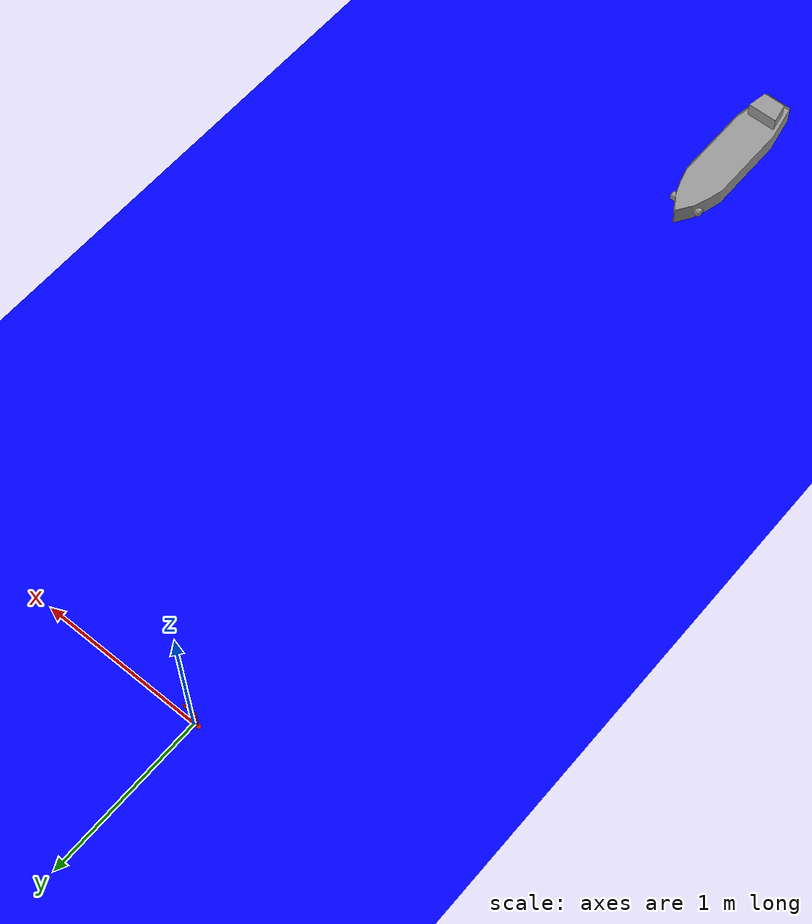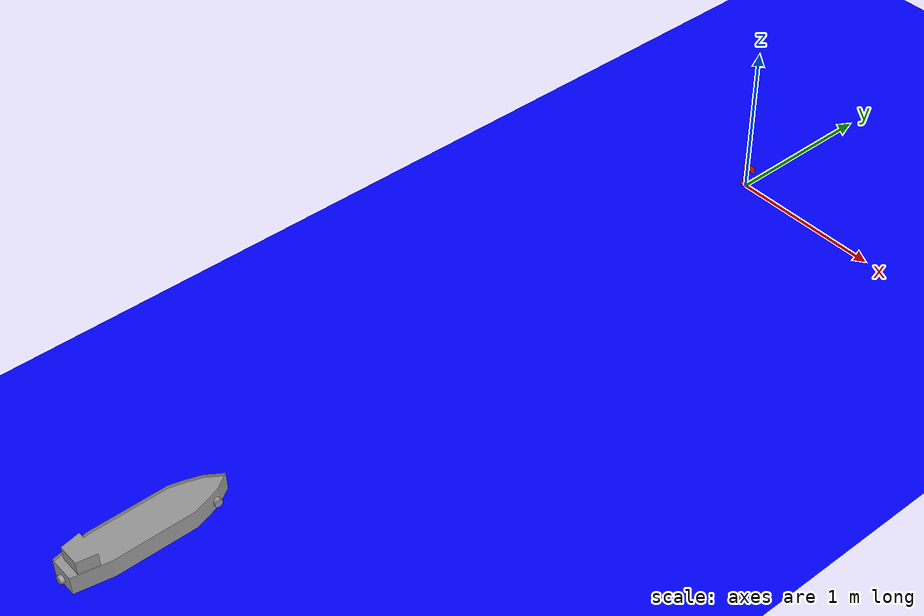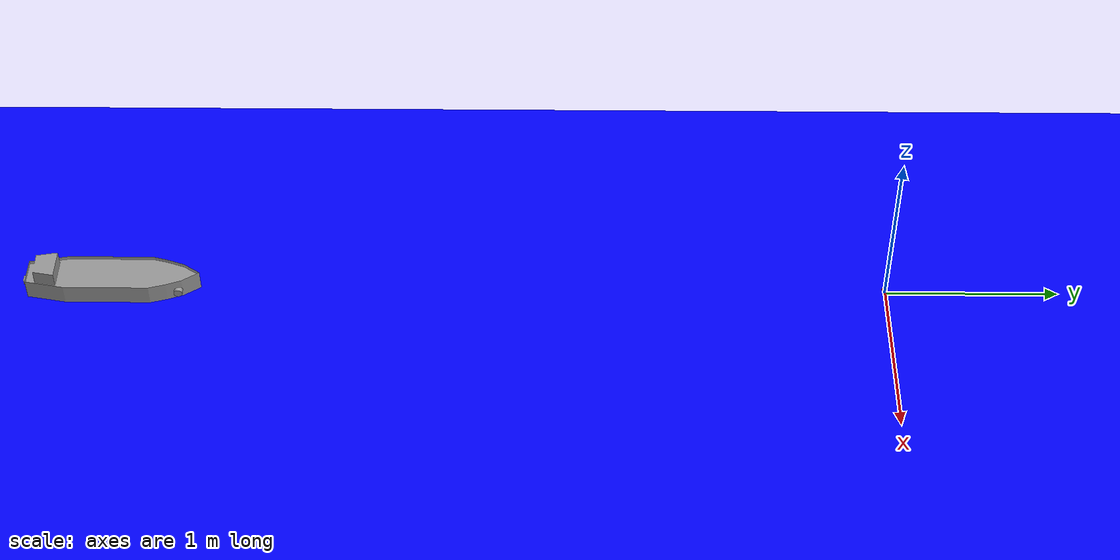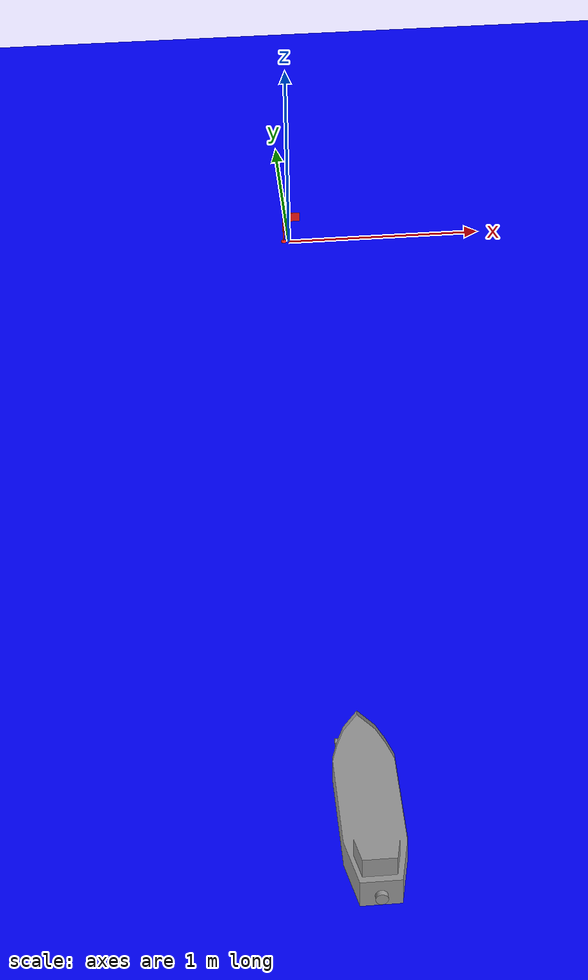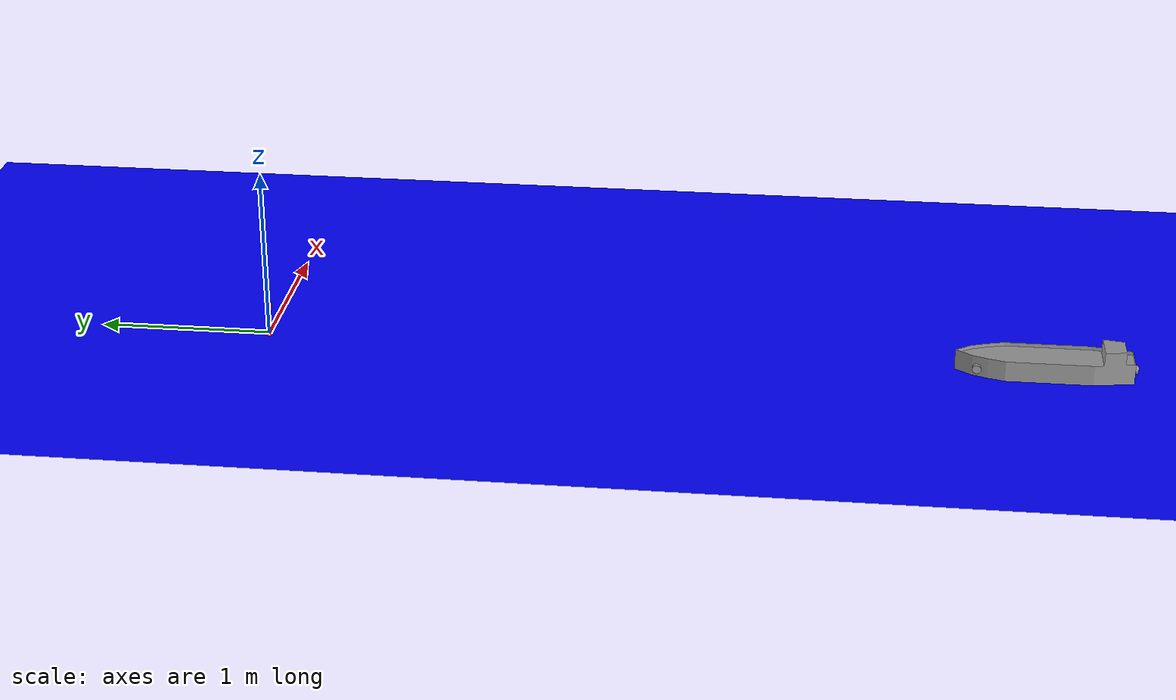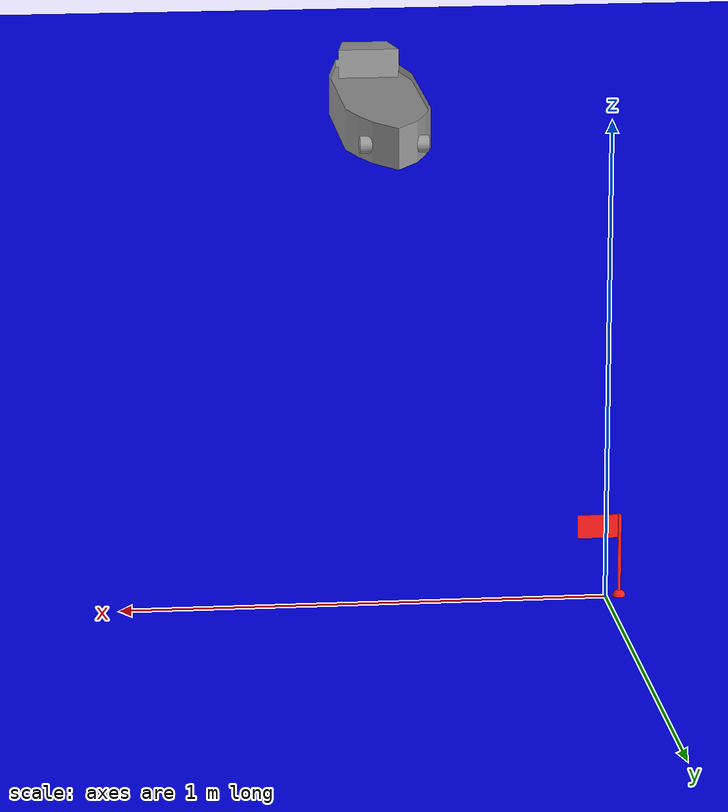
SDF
<sdf version="1.6">
 <world name="default">
  <light name="sun" type="directional">
   <pose>0 0 10 0 -0 0</pose>
   <diffuse>0.8 0.8 0.8 1</diffuse>
   <specular>0.2 0.2 0.2 1</specular>
   <attenuation>
    <range>1000</range>
    <constant>0.9</constant>
    <linear>0.01</linear>
    <quadratic>0.001</quadratic>
   </attenuation>
   <direction>-0.5 0.1 -0.9</direction>
  </light>
  <gravity>0 0 -9.8</gravity>
  <magnetic_field>6e-06 2.3e-05 -4.2e-05</magnetic_field>
  <atmosphere type="adiabatic"/>
  <physics name="default_physics" default="0" type="ode">
   <max_step_size>0.001</max_step_size>
   <real_time_factor>1</real_time_factor>
   <real_time_update_rate>1000</real_time_update_rate>
  </physics>
  <scene><ambient>0.4 0.4 0.4 1</ambient><background>0.7 0.7 0.7 1</background><shadows>1</shadows></scene>
  <spherical_coordinates>
   <surface_model>EARTH_WGS84</surface_model>
   <latitude_deg>0</latitude_deg>
   <longitude_deg>0</longitude_deg>
   <elevation>0</elevation>
   <heading_deg>0</heading_deg>
  </spherical_coordinates>
  <model name="Boat">
   <link name="link_0">
    <inertial>
     <mass>1</mass>
     <inertia>
      <ixx>0.166667</ixx>
      <ixy>0</ixy>
      <ixz>0</ixz>
      <iyy>0.166667</iyy>
      <iyz>0</iyz>
      <izz>0.166667</izz>
     </inertia>
    </inertial>
    <pose>-0.689151 0.214204 -0.016449 0 -0 0</pose>
    <visual name="visual">
     <pose>0 0 0 1.5707 -0 0</pose>
     <geometry><mesh><uri>/home/henri/gazebo/boat.obj</uri><scale>1 1 1</scale></mesh></geometry>
     <material>
      <lighting>1</lighting>
      <script><uri>file://media/materials/scripts/gazebo.material</uri><name>Gazebo/Grey</name></script>
      <shader type="pixel"><normal_map>__default__</normal_map></shader>
      <ambient>0.6 0.6 0.6 1</ambient>
      <diffuse>0.7 0.7 0.7 1</diffuse>
      <specular>0.01 0.01 0.01 1</specular>
      <emissive>0 0 0 1</emissive>
     </material>
    </visual>
    <collision name="collision">
     <pose>0 0 0 1.5707 -0 0</pose>
     <geometry><mesh><uri>/home/henri/gazebo/boat.obj</uri><scale>1 1 1</scale></mesh></geometry>
     <surface>
      <friction>
       <ode><mu>1</mu><mu2>1</mu2><fdir1>0 0 0</fdir1><slip1>0</slip1><slip2>0</slip2></ode>
       <torsional>
        <coefficient>1</coefficient>
        <patch_radius>0</patch_radius>
        <surface_radius>0</surface_radius>
        <use_patch_radius>1</use_patch_radius>
        <ode><slip>0</slip></ode>
       </torsional>
      </friction>
      <bounce><restitution_coefficient>0</restitution_coefficient><threshold>1e+06</threshold></bounce>
      <contact>
       <collide_without_contact>0</collide_without_contact>
       <collide_without_contact_bitmask>1</collide_without_contact_bitmask>
       <collide_bitmask>1</collide_bitmask>
       <ode>
        <soft_cfm>0</soft_cfm>
        <soft_erp>0.2</soft_erp>
        <kp>1e+13</kp>
        <kd>1</kd>
        <max_vel>0.01</max_vel>
        <min_depth>0</min_depth>
       </ode>
       <bullet>
        <split_impulse>1</split_impulse>
        <split_impulse_penetration_threshold>-0.01</split_impulse_penetration_threshold>
        <soft_cfm>0</soft_cfm>
        <soft_erp>0.2</soft_erp>
        <kp>1e+13</kp>
        <kd>1</kd>
       </bullet>
      </contact>
     </surface>
    </collision>
   </link>
   <link name="link_1">
    <inertial>
     <mass>1</mass>
     <inertia><ixx>0.145833</ixx><ixy>0</ixy><ixz>0</ixz><iyy>0.145833</iyy><iyz>0</iyz><izz>0.125</izz></inertia>
    </inertial>
    <pose>-0.689151 0.594204 -0.016449 0 -0 0</pose>
    <visual name="visual">
     <pose>0 0 0 0 1.5707 0</pose>
     <geometry><cylinder><radius>0.025</radius><length>0.2</length></cylinder></geometry>
     <material>
      <lighting>1</lighting>
      <script><uri>file://media/materials/scripts/gazebo.material</uri><name>Gazebo/Grey</name></script>
      <shader type="pixel"><normal_map>__default__</normal_map></shader>
      <ambient>0.3 0.3 0.3 1</ambient>
      <diffuse>0.7 0.7 0.7 1</diffuse>
      <specular>0.01 0.01 0.01 1</specular>
      <emissive>0 0 0 1</emissive>
     </material>
    </visual>
    <collision name="collision">
     <pose>0 0 0 0 1.5707 0</pose>
     <geometry><cylinder><radius>0.025</radius><length>0.2</length></cylinder></geometry>
     <surface>
      <friction>
       <ode><mu>1</mu><mu2>1</mu2><fdir1>0 0 0</fdir1><slip1>0</slip1><slip2>0</slip2></ode>
       <torsional>
        <coefficient>1</coefficient>
        <patch_radius>0</patch_radius>
        <surface_radius>0</surface_radius>
        <use_patch_radius>1</use_patch_radius>
        <ode><slip>0</slip></ode>
       </torsional>
      </friction>
      <bounce><restitution_coefficient>0</restitution_coefficient><threshold>1e+06</threshold></bounce>
      <contact>
       <collide_without_contact>0</collide_without_contact>
       <collide_without_contact_bitmask>1</collide_without_contact_bitmask>
       <collide_bitmask>1</collide_bitmask>
       <ode>
        <soft_cfm>0</soft_cfm>
        <soft_erp>0.2</soft_erp>
        <kp>1e+13</kp>
        <kd>1</kd>
        <max_vel>0.01</max_vel>
        <min_depth>0</min_depth>
       </ode>
       <bullet>
        <split_impulse>1</split_impulse>
        <split_impulse_penetration_threshold>-0.01</split_impulse_penetration_threshold>
        <soft_cfm>0</soft_cfm>
        <soft_erp>0.2</soft_erp>
        <kp>1e+13</kp>
        <kd>1</kd>
       </bullet>
      </contact>
     </surface>
    </collision>
   </link>
   <link name="link_2">
    <inertial>
     <mass>1</mass>
     <inertia><ixx>0.145833</ixx><ixy>0</ixy><ixz>0</ixz><iyy>0.145833</iyy><iyz>0</iyz><izz>0.125</izz></inertia>
    </inertial>
    <pose>-0.689151 -0.285796 -0.016449 0 -0 0</pose>
    <visual name="visual">
     <pose>0 0 0 1.5707 -0 0</pose>
     <geometry><cylinder><radius>0.025</radius><length>0.05</length></cylinder></geometry>
     <material>
      <lighting>1</lighting>
      <script><uri>file://media/materials/scripts/gazebo.material</uri><name>Gazebo/Grey</name></script>
      <shader type="pixel"><normal_map>__default__</normal_map></shader>
      <ambient>0.3 0.3 0.3 1</ambient>
      <diffuse>0.7 0.7 0.7 1</diffuse>
      <specular>0.01 0.01 0.01 1</specular>
      <emissive>0 0 0 1</emissive>
     </material>
    </visual>
    <collision name="collision">
     <pose>0 0 0 1.5707 -0 0</pose>
     <geometry><cylinder><radius>0.025</radius><length>0.05</length></cylinder></geometry>
     <surface>
      <friction>
       <ode><mu>1</mu><mu2>1</mu2><fdir1>0 0 0</fdir1><slip1>0</slip1><slip2>0</slip2></ode>
       <torsional>
        <coefficient>1</coefficient>
        <patch_radius>0</patch_radius>
        <surface_radius>0</surface_radius>
        <use_patch_radius>1</use_patch_radius>
        <ode><slip>0</slip></ode>
       </torsional>
      </friction>
      <bounce><restitution_coefficient>0</restitution_coefficient><threshold>1e+06</threshold></bounce>
      <contact>
       <collide_without_contact>0</collide_without_contact>
       <collide_without_contact_bitmask>1</collide_without_contact_bitmask>
       <collide_bitmask>1</collide_bitmask>
       <ode>
        <soft_cfm>0</soft_cfm>
        <soft_erp>0.2</soft_erp>
        <kp>1e+13</kp>
        <kd>1</kd>
        <max_vel>0.01</max_vel>
        <min_depth>0</min_depth>
       </ode>
       <bullet>
        <split_impulse>1</split_impulse>
        <split_impulse_penetration_threshold>-0.01</split_impulse_penetration_threshold>
        <soft_cfm>0</soft_cfm>
        <soft_erp>0.2</soft_erp>
        <kp>1e+13</kp>
        <kd>1</kd>
       </bullet>
      </contact>
     </surface>
    </collision>
   </link>
   <joint name="link_0_JOINT_0" type="fixed">
    <parent>link_0</parent>
    <child>link_1</child>
    <physics>
     <ode><limit><cfm>0</cfm><erp>0.2</erp></limit><suspension><cfm>0</cfm><erp>0.2</erp></suspension></ode>
    </physics>
   </joint>
   <joint name="link_0_JOINT_1" type="fixed">
    <parent>link_0</parent>
    <child>link_2</child>
    <physics>
     <ode><limit><cfm>0</cfm><erp>0.2</erp></limit><suspension><cfm>0</cfm><erp>0.2</erp></suspension></ode>
    </physics>
   </joint>
   <static>0</static>
   <plugin name="model_wfqi" filename="libmodel_wfqi.so"/>
   <pose>0.674771 -4.69541 0.066422 9.8e-05 6e-06 -1e-05</pose>
  </model>
  <model name="my_ground_plane">
   <static>1</static>
   <link name="link">
    <collision name="collision">
     <geometry><plane><normal>0 0 1</normal><size>100 100</size></plane></geometry>
     <surface><friction><ode><mu>0.1</mu><mu2>0.1</mu2></ode></friction></surface>
    </collision>
    <visual name="visual">
     <cast_shadows>0</cast_shadows>
     <geometry><plane><normal>0 0 1</normal><size>100 100</size></plane></geometry>
     <material><diffuse>0 0 1 1</diffuse></material>
    </visual>
   </link>
   <pose>0.313725 -0.206216 0 0 -0 0</pose>
  </model>
  <model name="Flag">
   <link name="link_1">
    <inertial>
     <mass>1</mass>
     <inertia>
      <ixx>0.166667</ixx>
      <ixy>0</ixy>
      <ixz>0</ixz>
      <iyy>0.166667</iyy>
      <iyz>0</iyz>
      <izz>0.166667</izz>
     </inertia>
    </inertial>
    <visual name="visual">
     <pose>0 0 0 1.5707 -0 0</pose>
     <geometry><mesh><uri>/home/henri/gazebo/flag.obj</uri><scale>0.1 0.1 0.1</scale></mesh></geometry>
     <material>
      <lighting>1</lighting>
      <script><uri>file://media/materials/scripts/gazebo.material</uri><name>Gazebo/Grey</name></script>
      <shader type="pixel"><normal_map>__default__</normal_map></shader>
      <ambient>0.3 0.3 0.3 1</ambient>
      <diffuse>1 0.1 0.1 1</diffuse>
      <specular>0.01 0.01 0.01 1</specular>
      <emissive>0 0 0 1</emissive>
     </material>
    </visual>
    <collision name="collision">
     <pose>0 0 0 1.5707 -0 0</pose>
     <geometry><mesh><uri>/home/henri/gazebo/flag.obj</uri><scale>0.1 0.1 0.1</scale></mesh></geometry>
     <surface>
      <friction>
       <ode><mu>1</mu><mu2>1</mu2><fdir1>0 0 0</fdir1><slip1>0</slip1><slip2>0</slip2></ode>
       <torsional>
        <coefficient>1</coefficient>
        <patch_radius>0</patch_radius>
        <surface_radius>0</surface_radius>
        <use_patch_radius>1</use_patch_radius>
        <ode><slip>0</slip></ode>
       </torsional>
      </friction>
      <bounce><restitution_coefficient>0</restitution_coefficient><threshold>1e+06</threshold></bounce>
      <contact>
       <collide_without_contact>0</collide_without_contact>
       <collide_without_contact_bitmask>1</collide_without_contact_bitmask>
       <collide_bitmask>1</collide_bitmask>
       <ode>
        <soft_cfm>0</soft_cfm>
        <soft_erp>0.2</soft_erp>
        <kp>1e+13</kp>
        <kd>1</kd>
        <max_vel>0.01</max_vel>
        <min_depth>0</min_depth>
       </ode>
       <bullet>
        <split_impulse>1</split_impulse>
        <split_impulse_penetration_threshold>-0.01</split_impulse_penetration_threshold>
        <soft_cfm>0</soft_cfm>
        <soft_erp>0.2</soft_erp>
        <kp>1e+13</kp>
        <kd>1</kd>
       </bullet>
      </contact>
     </surface>
    </collision>
   </link>
   <static>0</static>
   <plugin name="flag_locator" filename="libflag_locator.so"/>
   <pose>-0.027723 -0.003597 0 0 -0 0</pose>
  </model>
 </world>
</sdf>
